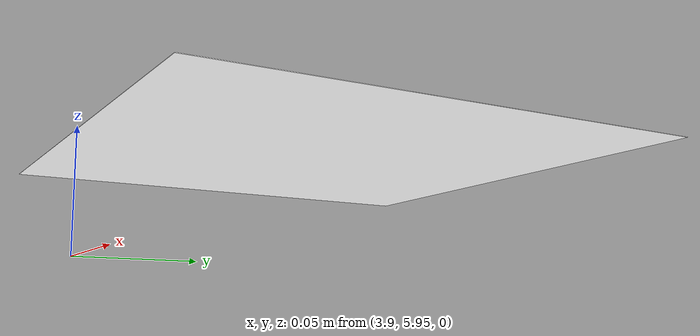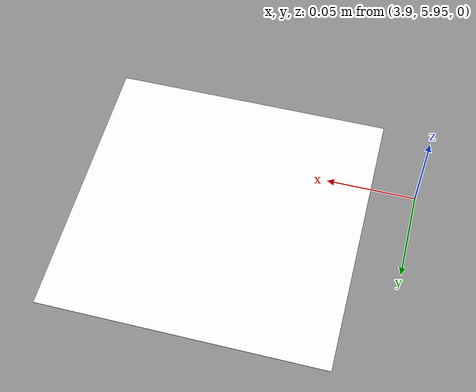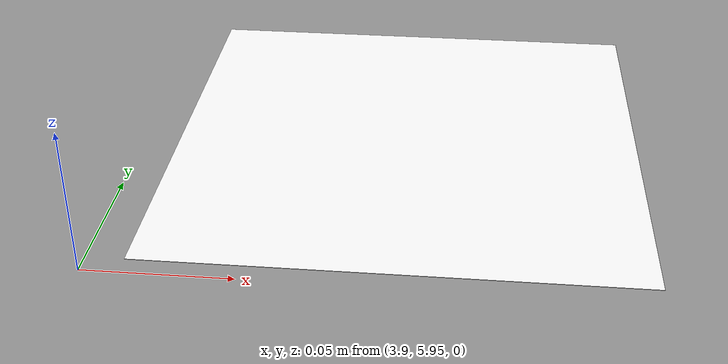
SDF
<?xml version="1.0" encoding="UTF-8"?>
<sdf version='1.9'>
  <model name='arucotag_100'>
    <static>true</static>
    <pose>4 6 0.025 0 0 0</pose>
    <link name='base'>
      <visual name='base_visual'>
        <geometry>
          <plane>
            <normal>0 0 1</normal>
            <size>0.15 0.15</size>
          </plane>
        </geometry>
        <material>
          <diffuse>1 1 1 1</diffuse>
          <specular>0.4 0.4 0.4 1</specular>
          <pbr>
            <metal>
              <albedo_map>model://arucotag_100/100.png</albedo_map>
            </metal>
          </pbr>
        </material>
      </visual>
    </link>
  </model>
</sdf>
